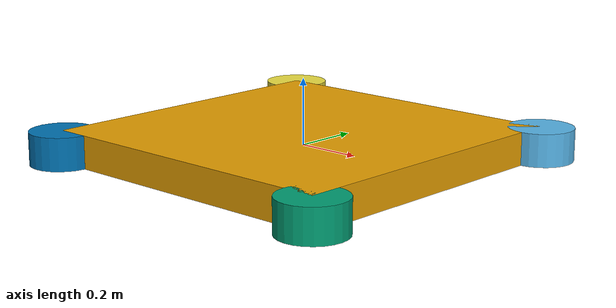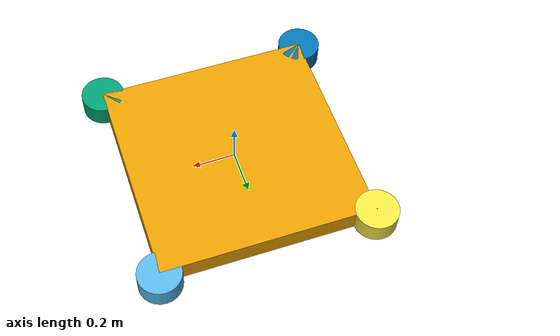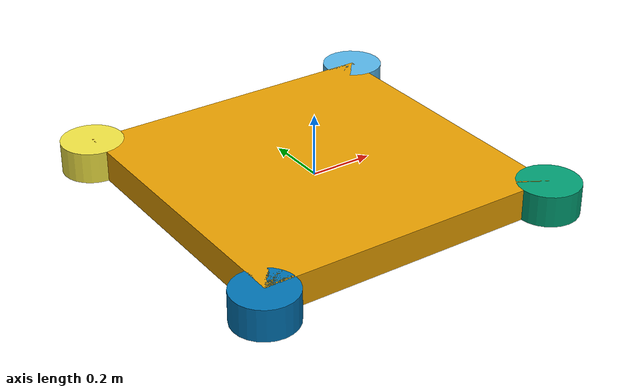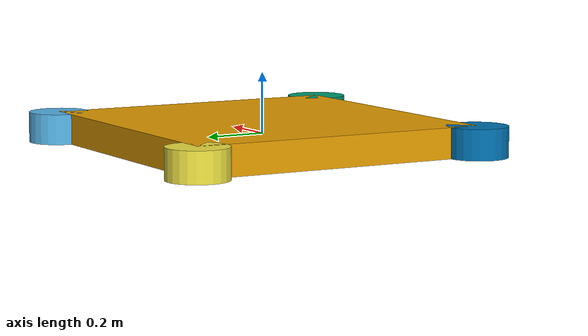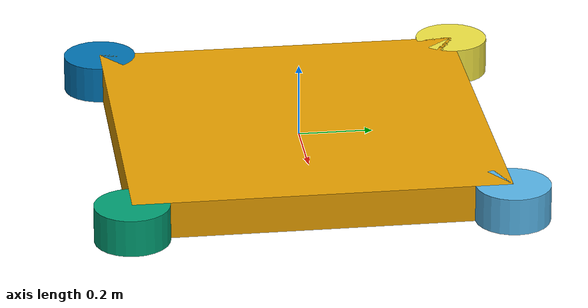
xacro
<?xml version="1.0"?>
<robot xmlns:xacro="http://ros.org/wiki/xacro" xmlns="http://www.w3.org/2001/XMLSchema-instance" name="mecanum_robot">

    <xacro:property name="wheel_radius" value="0.1"/>
    <xacro:property name="wheel_separation" value="0.5"/>

    <ros2_control>
        <hardware>
            <joint name="joint_front_left" type="revolute">
                <position_interface />
                <velocity_interface />
            </joint>
            <joint name="joint_front_right" type="revolute">
                <position_interface />
                <velocity_interface />
            </joint>
            <joint name="joint_back_left" type="revolute">
                <position_interface />
                <velocity_interface />
            </joint>
            <joint name="joint_back_right" type="revolute">
                <position_interface />
                <velocity_interface />
            </joint>
        </hardware>

        <controller>
            <joint name="joint_front_left">
                <velocity_interface />
            </joint>
            <joint name="joint_front_right">
                <velocity_interface />
            </joint>
            <joint name="joint_back_left">
                <velocity_interface />
            </joint>
            <joint name="joint_back_right">
                <velocity_interface />
            </joint>
        </controller>
    </ros2_control>

    <link name="base_link">
        <inertial>
            <mass value="1.0"/>
            <inertia ixx="0.1" ixy="0.0" ixz="0.0" iyy="0.1" iyz="0.0" izz="0.1"/>
        </inertial>
        <visual>
            <geometry>
                <box size="1 1 0.1"/>
            </geometry>
        </visual>
    </link>

    <link name="front_left_wheel">
        <inertial>
            <mass value="0.5"/>
            <inertia ixx="0.01" ixy="0.0" ixz="0.0" iyy="0.01" iyz="0.0" izz="0.01"/>
        </inertial>
        <visual>
            <geometry>
                <cylinder radius="${wheel_radius}" length="0.1"/>
            </geometry>
        </visual>
    </link>

    <joint name="joint_front_left" type="revolute">
        <parent link="base_link"/>
        <child link="front_left_wheel"/>
        <origin xyz="${wheel_separation} ${wheel_separation} 0" rpy="0 0 0"/>
        <axis xyz="0 0 1"/>
    </joint>

    <link name="front_right_wheel">
        <inertial>
            <mass value="0.5"/>
            <inertia ixx="0.01" ixy="0.0" ixz="0.0" iyy="0.01" iyz="0.0" izz="0.01"/>
        </inertial>
        <visual>
            <geometry>
                <cylinder radius="${wheel_radius}" length="0.1"/>
            </geometry>
        </visual>
    </link>

    <joint name="joint_front_right" type="revolute">
        <parent link="base_link"/>
        <child link="front_right_wheel"/>
        <origin xyz="${wheel_separation} -${wheel_separation} 0" rpy="0 0 0"/>
        <axis xyz="0 0 1"/>
    </joint>

    <link name="back_left_wheel">
        <inertial>
            <mass value="0.5"/>
            <inertia ixx="0.01" ixy="0.0" ixz="0.0" iyy="0.01" iyz="0.0" izz="0.01"/>
        </inertial>
        <visual>
            <geometry>
                <cylinder radius="${wheel_radius}" length="0.1"/>
            </geometry>
        </visual>
    </link>

    <joint name="joint_back_left" type="revolute">
        <parent link="base_link"/>
        <child link="back_left_wheel"/>
        <origin xyz="-${wheel_separation} ${wheel_separation} 0" rpy="0 0 0"/>
        <axis xyz="0 0  1"/>
    </joint>

    <link name="back_right_wheel">
        <inertial>
            <mass value="0.5"/>
            <inertia ixx="0.01" ixy="0.0" ixz="0.0" iyy="0.01" iyz="0.0" izz="0.01"/>
        </inertial>
        <visual>
            <geometry>
                <cylinder radius="${wheel_radius}" length="0.1"/>
            </geometry>
        </visual>
    </link>

    <joint name="joint_back_right" type="revolute">
        <parent link="base_link"/>
        <child link="back_right_wheel"/>
        <origin xyz="-${wheel_separation} -${wheel_separation} 0" rpy="0 0 0"/>
        <axis xyz="0 0 1"/>
    </joint>

</robot>
